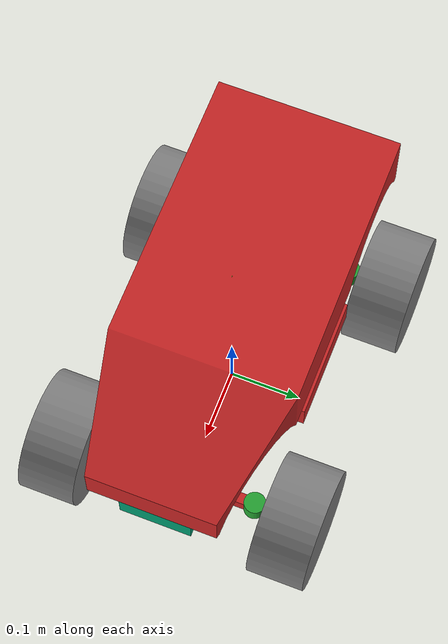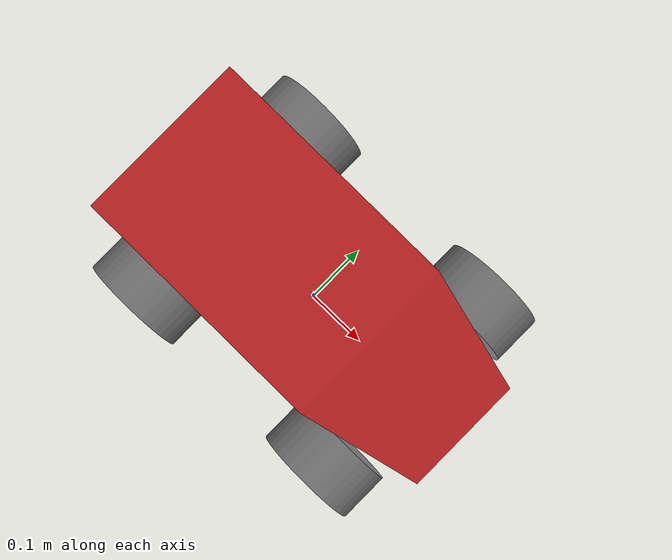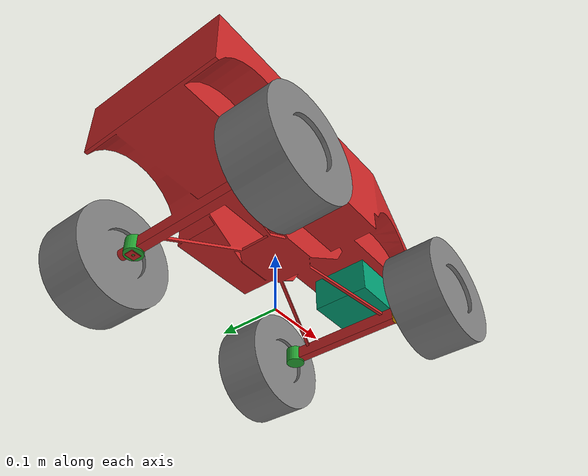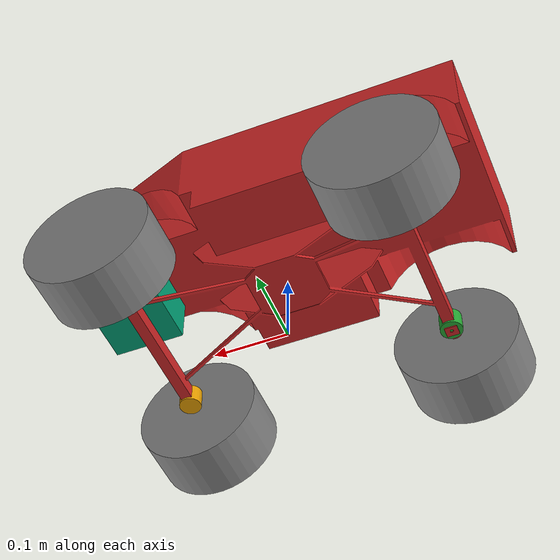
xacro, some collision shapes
<?xml version="1.0"?>
<robot name="summit" xmlns:xacro="http://www.ros.org/wiki/xacro">

  <!-- Import all Gazebo-customization elements, including Gazebo colors -->
  <xacro:include filename="$(find summit_description)/urdf/summit.gazebo" />

  <!-- Robot mechanical and motor parameters -->
  <xacro:property name="PI" value="3.1415926535897931"/>
  <xacro:property name="wheel_offset_x" value="0.185" />    <!-- x,y,z in base_footprint CS -->
  <xacro:property name="wheel_offset_y" value="0.105" />
  <xacro:property name="wheel_offset_z" value="0.0" />
  <xacro:property name="steer_joint_effort_limit" value="100.0" />
  <xacro:property name="steer_joint_velocity_limit" value="3.0" />
  <xacro:property name="steer_joint_damping" value="0.2" />
  <xacro:property name="steer_joint_friction" value="0.1" />
  <xacro:property name="steer_mechanical_reduction" value="100.0" />

  <xacro:property name="wheel_joint_effort_limit" value="100.0" />
  <xacro:property name="wheel_joint_damping" value="0.0" />
  <xacro:property name="wheel_joint_friction" value="0.0" />

  <xacro:property name="wheel_joint_velocity_limit" value="200.0" />
  <xacro:property name="wheel_mechanical_reduction" value="1.0" />
  <xacro:property name="wheel_width" value="0.175" />
  <xacro:property name="ptz_joint_effort_limit" value="100.0" />
  <xacro:property name="ptz_joint_velocity_limit" value="100.0"/>
  <xacro:property name="ptz_joint_friction" value="0.1" />
  <xacro:property name="ptz_joint_damping" value="0.1" />
  <xacro:property name="ptz_mechanical_reduction" value="1.0" />

  <!-- BASE FOOTPRINT -->

  <!-- base_footprint is a fictitious link(frame) that is on the ground right below base_link origin,
             navigation stack depends on this frame -->
  <link name="base_footprint">

      <visual>
          <origin xyz="0 0 0" rpy="0 0 0" />
          <geometry>
             <box size="0.001 0.001 0.001" />
          </geometry>
      </visual>

      <collision>
          <origin xyz="0 0 0.0" rpy="0 0 0" />
          <geometry>
            <box size="0.001 0.001 0.001" />
         </geometry>
     </collision>
  </link>

  <joint name="base_footprint_joint" type="fixed">
     <!--NB: While you would think this would make it go up, it is oddly reversed.
      This moves the joint to 0,0,0 where we want it for rviz, etc. -->
     <!-- origin xyz="0 0 0.130" rpy="0 0 0" / -->
     <origin xyz="0 0 0.050" rpy="0 0 0"/>
     <parent link="base_footprint"/>
     <child link="base_link" />
  </joint>

  <!-- BASE_LINK (RED) -->
  <link name="base_link">
    <inertial>
      <mass value="6.5" />
      <origin xyz="0 0 0" />
      <inertia  ixx="0.21805" ixy="0.0"  ixz="-0.001"  iyy="0.33677"  iyz="0.0"  izz="0.20511" />
    </inertial>
    <visual>
       <origin xyz="0 0 0" rpy="0 0 0" />
       <geometry>
	 <mesh filename="package://summit_description/meshes/summit_chassis.dae"/>
       </geometry>
    </visual>
    <collision>
       <origin xyz="0 0 0.06" rpy="0 0 0 " />
       <geometry>
         <mesh filename="package://summit_description/meshes/summit_chassis.dae"/>
	     <!-- box size = "0.56 0.4 0.2"/ -->
       </geometry>
    </collision>
  </link>

<!-- DIRECTION BACK LEFT         -->
  <link name="back_left_wheel_dir">
    <inertial>
      <mass value="0.1" />
      <!-- center of mass (com) is defined w.r.t. link local coord system -->
      <origin xyz="0 0 0" />
      <inertia  ixx="0.01" ixy="0.0"  ixz="0.0"  iyy="0.01"  iyz="0.0"  izz="0.01" />
    </inertial>
    <visual>
       <!-- visual origin is defined w.r.t. link local coordinate system -->
       <origin xyz="0 0 0" rpy="0 0 1.5708" />
       <geometry>
         <cylinder radius="0.015" length="0.025"/>
         <!-- mesh filename="package://summit_description/meshes/wheel_axis.dae"/-->
       </geometry>
    </visual>
    <collision>
       <!-- collision origin is defined w.r.t. link local coord. system -->
       <origin xyz="0 0 0" rpy="0 0 0 " />
       <geometry>
         <cylinder radius="0.015" length="0.025"/>
       </geometry>
    </collision>
  </link>

  <joint name="joint_back_left_wheel_dir" type="continuous">
    <parent link="base_link"/>
    <child link="back_left_wheel_dir"/>
    <origin xyz="-${wheel_offset_x} ${wheel_offset_y} 0" rpy="0 0 0" />
    <axis xyz="0 0 1" rpy="0 0 0" />
    <limit effort="${steer_joint_effort_limit}" velocity="${steer_joint_velocity_limit}" lower="-0.7854" upper="0.7854"/>
    <joint_properties damping="${steer_joint_damping}" friction="{steer_joint_friction}"/>
  </joint>

  <transmission name="joint_blw_trans_dir">
	<type>transmission_interface/SimpleTransmission</type>
    <joint name="joint_back_left_wheel_dir" />
    <actuator name="joint_blw_motor_dir">
	  <hardwareInterface>EffortJointInterface</hardwareInterface>
      <mechanicalReduction>${steer_mechanical_reduction}</mechanicalReduction>
	</actuator>
  </transmission>

  <!-- BACK LEFT WHEEL -->
  <link name="back_left_wheel">
    <inertial>
      <mass value="1.023" />
      <origin xyz="0 0 0" />
      <inertia  ixx="0.0027" ixy="0.0"  ixz="0.0"  iyy="0.0039"  iyz="0.0"  izz="0.0027" />
    </inertial>
    <visual>
       <origin xyz="0 0 0" rpy="0 0 0" />
       <geometry>
	 <mesh filename="package://summit_description/meshes/wheel.dae"/>
       </geometry>
        <material name="grey">
             <color rgba="0.5 0.5 0.5 1"/>
        </material>
    </visual>
    <collision>
       <origin xyz="0 0 0" rpy="0 0 0" />
       <geometry>
         <mesh filename="package://summit_description/meshes/wheel.dae"/>
       </geometry>
    </collision>
  </link>

  <joint name="joint_back_left_wheel" type="continuous">
    <parent link="back_left_wheel_dir"/>
    <child link="back_left_wheel"/>
    <origin xyz="0.0 0.060 0" rpy="0 0 0" />
    <axis xyz="0 1 0" rpy="0 0 0" />
    <limit effort="${wheel_joint_effort_limit}" velocity="${wheel_joint_velocity_limit}"/>
    <joint_properties damping="${wheel_joint_damping}" friction="{wheel_joint_friction}"/>
  </joint>

  <transmission name="joint_blw_trans">
	 <type>transmission_interface/SimpleTransmission</type>
     <joint name="joint_back_left_wheel" />
     <actuator name="joint_blw_motor">
	    <hardwareInterface>VelocityJointInterface</hardwareInterface>
        <mechanicalReduction>${wheel_mechanical_reduction}</mechanicalReduction>
	 </actuator>
  </transmission>

<!-- DIRECTION BACK RIGHT        -->
  <link name="back_right_wheel_dir">
    <inertial>
      <mass value="0.1" />
      <!-- center of mass (com) is defined w.r.t. link local coord system -->
      <origin xyz="0 0 0" />
      <inertia  ixx="0.01" ixy="0.0"  ixz="0.0"  iyy="0.01"  iyz="0.0"  izz="0.01" />
    </inertial>
    <visual>
       <!-- visual origin is defined w.r.t. link local coordinate system -->
       <origin xyz="0 0 0" rpy="0 0 0" />
       <geometry>
         <cylinder radius="0.015" length="0.025"/>
       </geometry>
    </visual>
    <collision>
       <!-- collision origin is defined w.r.t. link local coord. system -->
       <origin xyz="0 0 0" rpy="0 0 0 " />
       <geometry>
         <cylinder radius="0.015" length="0.025"/>
       </geometry>
    </collision>
  </link>

  <joint name="joint_back_right_wheel_dir" type="continuous">
    <parent link="base_link"/>
    <child link="back_right_wheel_dir"/>
    <origin xyz="-${wheel_offset_x} -${wheel_offset_y} 0" rpy="0 0 0" />
    <axis xyz="0 0 1" rpy="0 0 0" />
    <limit effort="${steer_joint_effort_limit}" velocity="${steer_joint_velocity_limit}" lower="-0.7854" upper="0.7854"/>
    <joint_properties damping="${steer_joint_damping}" friction="{steer_joint_friction}"/>
  </joint>

  <transmission name="joint_brw_trans_dir">
	<type>transmission_interface/SimpleTransmission</type>
    <joint name="joint_back_right_wheel_dir" />
    <actuator name="joint_brw_motor_dir">
	  <hardwareInterface>EffortJointInterface</hardwareInterface>
      <mechanicalReduction>${steer_mechanical_reduction}</mechanicalReduction>
	</actuator>
  </transmission>

  <!-- BACK RIGHT WHEEL -->
  <link name="back_right_wheel">
    <inertial>
      <mass value="1.023" />
      <origin xyz="0 0 0" />
      <inertia  ixx="0.0027" ixy="0.0"  ixz="0.0"  iyy="0.0039"  iyz="0.0"  izz="0.0027" />
    </inertial>
    <visual>
       <origin xyz="0 0 0" rpy="0 0 0" />
       <geometry>
         <mesh filename="package://summit_description/meshes/wheel.dae"/>
       </geometry>
        <material name="grey">
                <color rgba="0.5 0.5 0.5 1"/>
        </material>
    </visual>
    <collision>
       <origin xyz="0 0 0" rpy="0 0 0" />
       <geometry>
         <mesh filename="package://summit_description/meshes/wheel.dae"/>
       </geometry>
    </collision>
  </link>

  <joint name="joint_back_right_wheel" type="continuous">
    <parent link="back_right_wheel_dir"/>
    <child link="back_right_wheel"/>
    <origin xyz="0.0 -0.060 0" rpy="0 0 0" />
    <axis xyz="0 1 0" rpy="0 0 0" />
    <limit effort="${wheel_joint_effort_limit}" velocity="${wheel_joint_velocity_limit}"/>
    <joint_properties damping="${wheel_joint_damping}" friction="{wheel_joint_friction}"/>
  </joint>

  <transmission name="joint_brw_trans">
	 <type>transmission_interface/SimpleTransmission</type>
     <joint name="joint_back_right_wheel" />
     <actuator name="joint_brw_motor">
	    <hardwareInterface>VelocityJointInterface</hardwareInterface>
        <mechanicalReduction>${wheel_mechanical_reduction}</mechanicalReduction>
	 </actuator>
  </transmission>

<!-- DIRECTION FORWARD LEFT      -->

  <link name="front_left_wheel_dir">
    <inertial>
      <mass value="0.1" />
      <!-- center of mass (com) is defined w.r.t. link local coord system -->
      <origin xyz="0 0 0" />
      <inertia  ixx="0.01" ixy="0.0"  ixz="0.0"  iyy="0.01"  iyz="0.0"  izz="0.01" />
    </inertial>
    <visual>
       <!-- visual origin is defined w.r.t. link local coordinate system -->
       <origin xyz="0 0 0" rpy="0 0 0" />
       <geometry>
         <cylinder radius="0.015" length="0.025"/>
       </geometry>
    </visual>
    <collision>
       <!-- collision origin is defined w.r.t. link local coord. system -->
       <origin xyz="0 0 0" rpy="0 0 0 " />
       <geometry>
         <cylinder radius="0.015" length="0.025"/>
       </geometry>
    </collision>
  </link>

  <joint name="joint_front_left_wheel_dir" type="continuous">
    <parent link="base_link"/>
    <child link="front_left_wheel_dir"/>
    <origin xyz="${wheel_offset_x} ${wheel_offset_y} 0" rpy="0 0 0" />
    <axis xyz="0 0 1" rpy="0 0 0" />
    <limit effort="${steer_joint_effort_limit}" velocity="${steer_joint_velocity_limit}" lower="-0.7854" upper="0.7854"/>
    <joint_properties damping="${steer_joint_damping}" friction="{steer_joint_friction}"/>
  </joint>

  <transmission name="joint_flw_trans_dir">
	<type>transmission_interface/SimpleTransmission</type>
    <joint name="joint_front_left_wheel_dir" />
    <actuator name="joint_flw_motor_dir">
	  <hardwareInterface>EffortJointInterface</hardwareInterface>
      <mechanicalReduction>${steer_mechanical_reduction}</mechanicalReduction>
	</actuator>
  </transmission>

  <!-- FRONT LEFT WHEEL (GREY) -->
  <link name="front_left_wheel">
    <inertial>
      <mass value="1.023" />
      <origin xyz="0 0 0" />
      <inertia  ixx="0.0027" ixy="0.0"  ixz="0.0"  iyy="0.0039"  iyz="0.0"  izz="0.0027" />
    </inertial>
    <visual>
       <origin xyz="0 0 0" rpy="0 0 0" />
       <geometry>
         <mesh filename="package://summit_description/meshes/wheel.dae"/>
       </geometry>
	<material name="gray">
		<color rgba="0.5 0.5 0.5 1"/>
      	</material>
    </visual>
    <collision>
       <origin xyz="0 0 0" rpy="0 0 0" />
       <geometry>
         <mesh filename="package://summit_description/meshes/wheel.dae"/>
       </geometry>
    </collision>
  </link>

  <joint name="joint_front_left_wheel" type="continuous">
    <parent link="front_left_wheel_dir"/>
    <child link="front_left_wheel"/>
    <origin xyz="0.0 0.060 0" rpy="0 0 0" />
    <axis xyz="0 1 0" rpy="0 0 0" />
    <limit effort="${wheel_joint_effort_limit}" velocity="${wheel_joint_velocity_limit}"/>
    <joint_properties damping="${wheel_joint_damping}" friction="{wheel_joint_friction}"/>
  </joint>

  <transmission name="joint_flw_trans">
	 <type>transmission_interface/SimpleTransmission</type>
     <joint name="joint_front_left_wheel" />
     <actuator name="joint_flw_motor">
	    <hardwareInterface>VelocityJointInterface</hardwareInterface>
        <mechanicalReduction>${wheel_mechanical_reduction}</mechanicalReduction>
	 </actuator>
  </transmission>

<!-- DIRECTION FORWARD RIGHT     -->

  <link name="front_right_wheel_dir">
    <inertial>
      <mass value="0.1" />
      <!-- center of mass (com) is defined w.r.t. link local coord system -->
      <origin xyz="0 0 0" />
      <inertia  ixx="0.01" ixy="0.0"  ixz="0.0"  iyy="0.01"  iyz="0.0"  izz="0.01" />
    </inertial>
    <visual>
       <!-- visual origin is defined w.r.t. link local coordinate system -->
       <origin xyz="0 0 0" rpy="0 0 0" />
       <geometry>
         <cylinder radius="0.015" length="0.025"/>
       </geometry>
    </visual>
    <collision>
       <!-- collision origin is defined w.r.t. link local coord. system -->
       <origin xyz="0 0 0" rpy="0 0 0 " />
       <geometry>
         <cylinder radius="0.015" length="0.025"/>
       </geometry>
    </collision>
  </link>

  <joint name="joint_front_right_wheel_dir" type="continuous">
    <parent link="base_link"/>
    <child link="front_right_wheel_dir"/>
    <origin xyz="${wheel_offset_x} -${wheel_offset_y} 0" rpy="0 0 0" />
    <axis xyz="0 0 1" rpy="0 0 0" />
    <limit effort="${steer_joint_effort_limit}" velocity="${steer_joint_velocity_limit}" lower="-0.7854" upper="0.7854"/>
    <joint_properties damping="${steer_joint_damping}" friction="{steer_joint_friction}"/>
  </joint>

  <transmission name="joint_frw_trans_dir">
	<type>transmission_interface/SimpleTransmission</type>
    <joint name="joint_front_right_wheel_dir" />
    <actuator name="joint_frw_motor_dir">
	  <hardwareInterface>EffortJointInterface</hardwareInterface>
      <mechanicalReduction>${steer_mechanical_reduction}</mechanicalReduction>
	</actuator>
  </transmission>

  <!-- FRONT RIGHT WHEEL (GREY) -->
  <link name="front_right_wheel">
    <inertial>
      <mass value="1.023" />
      <origin xyz="0 0 0" />
      <inertia  ixx="0.0027" ixy="0.0"  ixz="0.0"  iyy="0.0039"  iyz="0.0"  izz="0.0027" />
    </inertial>
    <visual>
       <origin xyz="0 0 0" rpy="0 0 0" />
       <geometry>
         <mesh filename="package://summit_description/meshes/wheel.dae"/>
       </geometry>
	<material name="grey">
		<color rgba="0.5 0.5 0.5 1"/>
      	</material>
    </visual>
    <collision>
       <origin xyz="0 0 0" rpy="0 0 0" />
       <geometry>
         <mesh filename="package://summit_description/meshes/wheel.dae"/>
       </geometry>
    </collision>
  </link>

  <joint name="joint_front_right_wheel" type="continuous">
    <parent link="front_right_wheel_dir"/>
    <child link="front_right_wheel"/>
    <origin xyz="0.0 -0.060 0" rpy="0 0 0" />
    <axis xyz="0 1 0" rpy="0 0 0" />
    <limit effort="${wheel_joint_effort_limit}" velocity="${wheel_joint_velocity_limit}"/>
    <joint_properties damping="${wheel_joint_damping}" friction="{wheel_joint_friction}"/>
  </joint>

  <transmission name="joint_frw_trans">
	 <type>transmission_interface/SimpleTransmission</type>
     <joint name="joint_front_right_wheel" />
     <actuator name="joint_frw_motor">
	    <hardwareInterface>VelocityJointInterface</hardwareInterface>
        <mechanicalReduction>${wheel_mechanical_reduction}</mechanicalReduction>
	 </actuator>
  </transmission>

  <!-- HOKUYO SENSOR -->
  <joint name="hokuyo_laser_joint" type="fixed">
     <axis xyz="0 1 0" />
     <origin xyz="0.226 0 0.120"/>
     <parent link="base_link"/>
     <child link="hokuyo_laser_link"/>
  </joint>

  <link name="hokuyo_laser_link" type="laser">
    <collision>
      <origin xyz="0 0 0" rpy="0 0 0"/>
      <geometry>
	     <box size="0.1 0.1 0.1"/>
      </geometry>
    </collision>
    <visual>
      <origin xyz="0 0 0" rpy="0 0 0"/>
      <geometry>
        <mesh filename="package://summit_description/meshes/hokuyo-utm30-lx.dae"/>
      </geometry>
    </visual>
    <inertial>
      <mass value="1e-5" />
      <origin xyz="0 0 0" rpy="0 0 0"/>
      <inertia ixx="1e-6" ixy="0" ixz="0" iyy="1e-6" iyz="0" izz="1e-6" />
    </inertial>
  </link>

  <!-- IMU SENSOR -->
  <joint name="imu_joint" type="fixed">
      <axis xyz="1 0 0"/>
      <origin xyz="0 0 0.2825"/>
      <parent link="base_link"/>
      <child link="imu_link"/>
  </joint>

  <link name="imu_link">
      <inertial>
        <mass value="0.001"/>
        <origin rpy="0 0 0" xyz="0 0 0"/>
        <inertia ixx="0.0001" ixy="0" ixz="0" iyy="0.000001" iyz="0" izz="0.0001"/>
      </inertial>
      <visual>
        <origin rpy="0 0 0" xyz="0 0 0"/>
        <geometry>
          <box size="0.001 0.001 0.001"/>
        </geometry>
      </visual>
      <collision>
        <origin rpy="0 0 0" xyz="0 0 0"/>
        <geometry>
          <box size=".001 .001 .001"/>
        </geometry>
      </collision>
  </link>

  <!-- AXIS PTZ CAMERA WITH PAN AND TILT -->
  <link name="camera_base_link">
     <inertial>
       <mass value="0.1" />
       <origin xyz="0 0 0" rpy="0 0 0" />
       <inertia ixx="0.1" ixy="0" ixz="0" iyy="0.1" iyz="0" izz="0.1" />
    </inertial>
  </link>

  <joint name="joint_camera" type="fixed">
     <axis xyz="0 1 0" />
     <!--origin xyz="0.180 0.0 0.270"/-->
     <origin xyz="0.150 0.0 0.240"/>
     <parent link="base_link"/>
     <child link="camera_base_link"/>
  </joint>

  <link name="camera_pan_link">
     <inertial>
       <mass value="0.1" />
       <origin xyz="0 0 0" rpy="0 0 0" />
       <inertia ixx="0.1" ixy="0" ixz="0" iyy="0.1" iyz="0" izz="0.1" />
    </inertial>
  </link>

  <joint name="joint_camera_pan" type="continuous">
     <axis xyz="0 0 1" />
     <origin xyz="0.0 0.0 0.0"/>
     <parent link="camera_base_link"/>
     <child link="camera_pan_link"/>
     <limit effort="${ptz_joint_effort_limit}" velocity="${ptz_joint_velocity_limit}" lower="-3.1416" upper="3.1416"/>
     <joint_properties damping="${ptz_joint_damping}" friction="{ptz_joint_friction}"/>
  </joint>

  <transmission name="joint_pan_trans">
	 <type>transmission_interface/SimpleTransmission</type>
     <joint name="joint_camera_pan" />
     <actuator name="pan_motor">
	   <hardwareInterface>EffortJointInterface</hardwareInterface>
       <mechanicalReduction>${ptz_mechanical_reduction}</mechanicalReduction>
     </actuator>
  </transmission>

  <link name="camera_tilt_link">
     <inertial>
       <mass value="0.1" />
       <!-- origin xyz="0 0 0" rpy="0 0 0" / -->
       <origin xyz="0 0 0.3" rpy="0 0 0" />
       <inertia ixx="0.1" ixy="0" ixz="0" iyy="0.1" iyz="0" izz="0.1" />
    </inertial>
  </link>

  <joint name="joint_camera_tilt" type="continuous">
     <axis xyz="0 1 0" />
     <origin xyz="0.0 0.0 0.0"/>
     <parent link="camera_pan_link"/>
     <child link="camera_tilt_link"/>
     <limit effort="${ptz_joint_effort_limit}" velocity="${ptz_joint_velocity_limit}" lower="-1.5708" upper="1.5708"/>
     <joint_properties damping="${ptz_joint_damping}" friction="{ptz_joint_friction}"/>
  </joint>

  <transmission name="joint_tilt_trans">
	 <type>transmission_interface/SimpleTransmission</type>
     <joint name="joint_camera_tilt" />
     <actuator name="tilt_motor">
	   <hardwareInterface>EffortJointInterface</hardwareInterface>
       <mechanicalReduction>${ptz_mechanical_reduction}</mechanicalReduction>
     </actuator>
  </transmission>

</robot>
